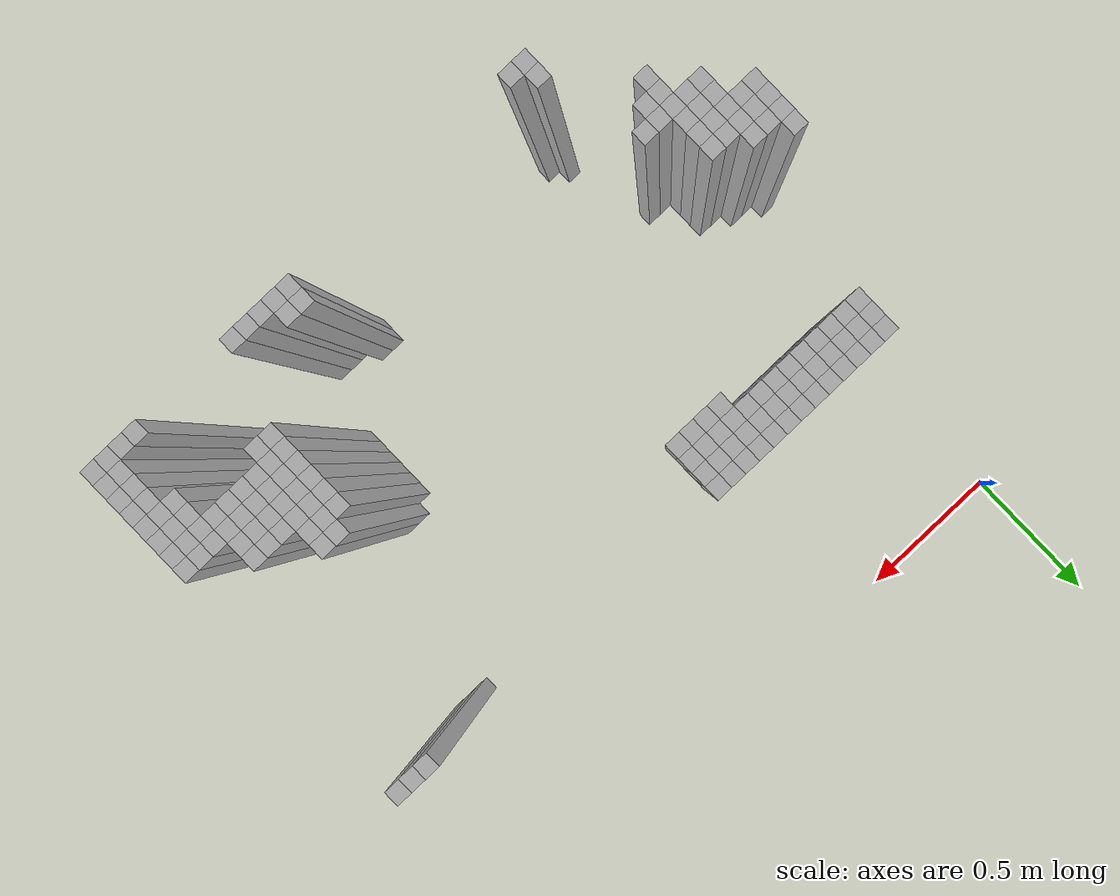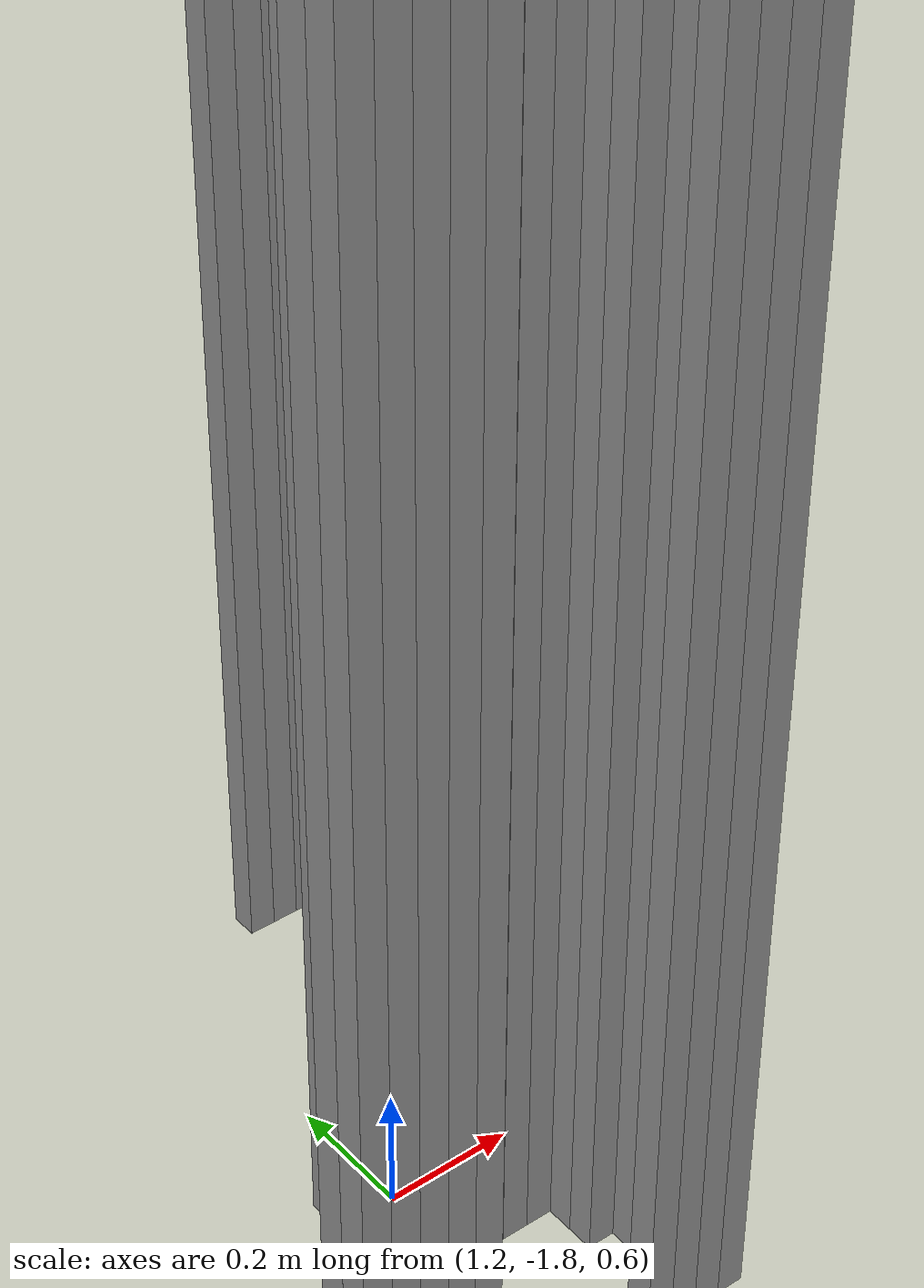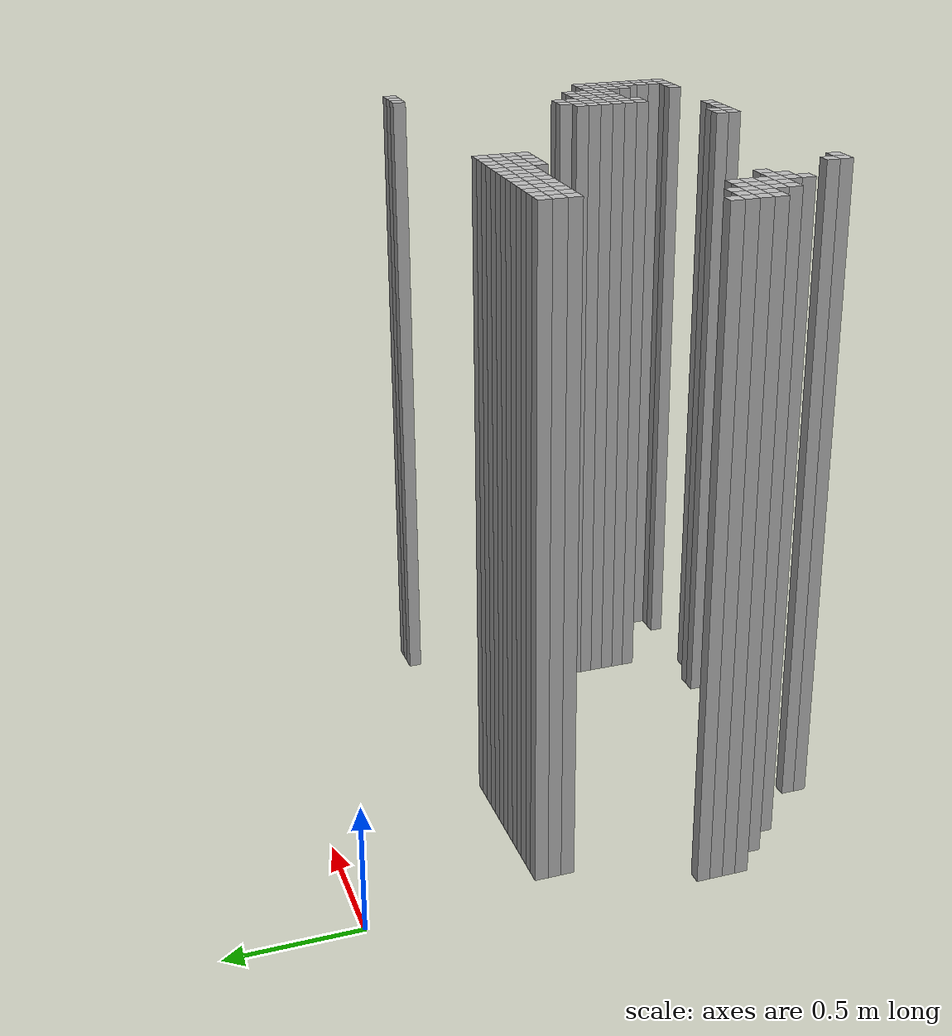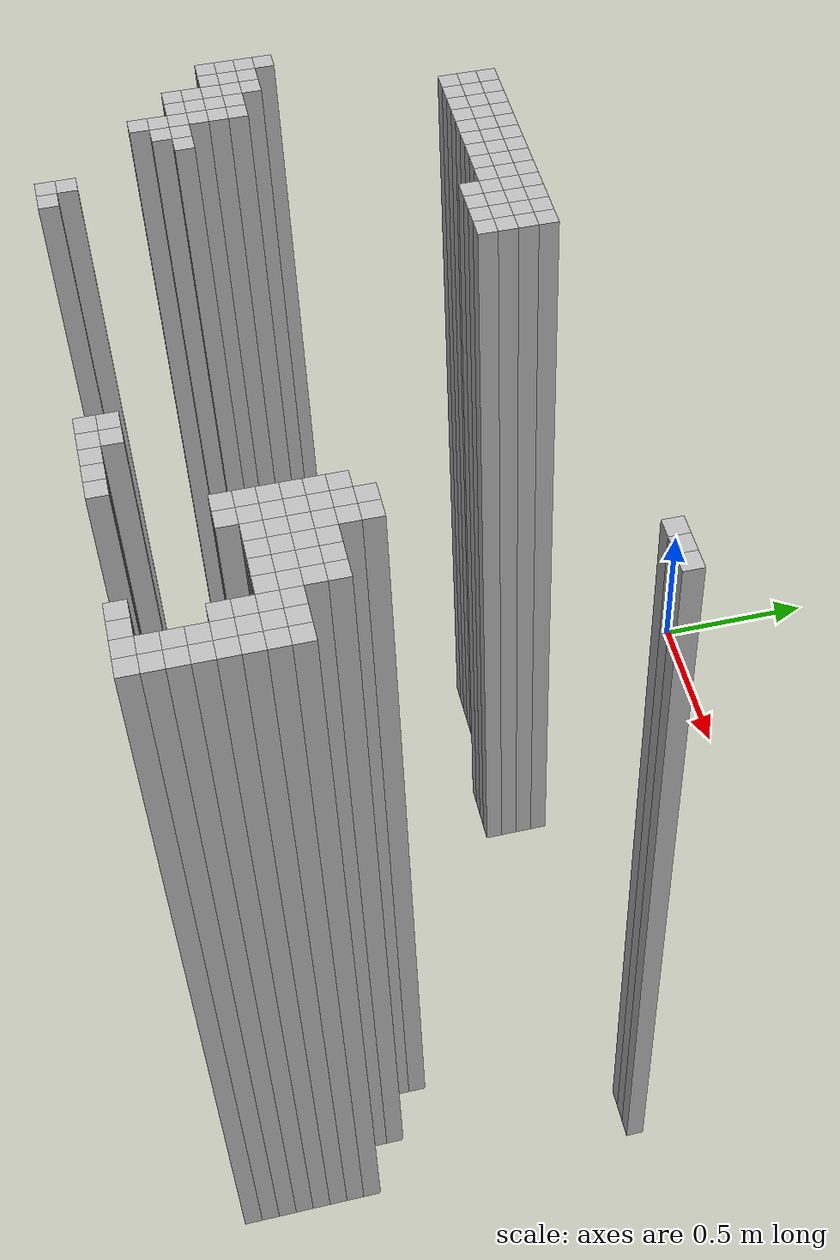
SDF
<sdf version="1.9">
 <world name="map_world">
  <model name="wall_225_167">
   <static>true</static>
   <pose>0.089 -0.670 1.250 0 0 0</pose>
   <link name="link">
    <collision name="collision"><geometry><box><size>0.050 0.050 2.500</size></box></geometry></collision>
    <visual name="visual"><geometry><box><size>0.050 0.050 2.500</size></box></geometry></visual>
   </link>
  </model>
  <model name="wall_226_167">
   <static>true</static>
   <pose>0.139 -0.670 1.250 0 0 0</pose>
   <link name="link">
    <collision name="collision"><geometry><box><size>0.050 0.050 2.500</size></box></geometry></collision>
    <visual name="visual"><geometry><box><size>0.050 0.050 2.500</size></box></geometry></visual>
   </link>
  </model>
  <model name="wall_227_167">
   <static>true</static>
   <pose>0.189 -0.670 1.250 0 0 0</pose>
   <link name="link">
    <collision name="collision"><geometry><box><size>0.050 0.050 2.500</size></box></geometry></collision>
    <visual name="visual"><geometry><box><size>0.050 0.050 2.500</size></box></geometry></visual>
   </link>
  </model>
  <model name="wall_228_167">
   <static>true</static>
   <pose>0.239 -0.670 1.250 0 0 0</pose>
   <link name="link">
    <collision name="collision"><geometry><box><size>0.050 0.050 2.500</size></box></geometry></collision>
    <visual name="visual"><geometry><box><size>0.050 0.050 2.500</size></box></geometry></visual>
   </link>
  </model>
  <model name="wall_229_167">
   <static>true</static>
   <pose>0.289 -0.670 1.250 0 0 0</pose>
   <link name="link">
    <collision name="collision"><geometry><box><size>0.050 0.050 2.500</size></box></geometry></collision>
    <visual name="visual"><geometry><box><size>0.050 0.050 2.500</size></box></geometry></visual>
   </link>
  </model>
  <model name="wall_230_167">
   <static>true</static>
   <pose>0.339 -0.670 1.250 0 0 0</pose>
   <link name="link">
    <collision name="collision"><geometry><box><size>0.050 0.050 2.500</size></box></geometry></collision>
    <visual name="visual"><geometry><box><size>0.050 0.050 2.500</size></box></geometry></visual>
   </link>
  </model>
  <model name="wall_231_167">
   <static>true</static>
   <pose>0.389 -0.670 1.250 0 0 0</pose>
   <link name="link">
    <collision name="collision"><geometry><box><size>0.050 0.050 2.500</size></box></geometry></collision>
    <visual name="visual"><geometry><box><size>0.050 0.050 2.500</size></box></geometry></visual>
   </link>
  </model>
  <model name="wall_232_167">
   <static>true</static>
   <pose>0.439 -0.670 1.250 0 0 0</pose>
   <link name="link">
    <collision name="collision"><geometry><box><size>0.050 0.050 2.500</size></box></geometry></collision>
    <visual name="visual"><geometry><box><size>0.050 0.050 2.500</size></box></geometry></visual>
   </link>
  </model>
  <model name="wall_233_167">
   <static>true</static>
   <pose>0.489 -0.670 1.250 0 0 0</pose>
   <link name="link">
    <collision name="collision"><geometry><box><size>0.050 0.050 2.500</size></box></geometry></collision>
    <visual name="visual"><geometry><box><size>0.050 0.050 2.500</size></box></geometry></visual>
   </link>
  </model>
  <model name="wall_234_167">
   <static>true</static>
   <pose>0.539 -0.670 1.250 0 0 0</pose>
   <link name="link">
    <collision name="collision"><geometry><box><size>0.050 0.050 2.500</size></box></geometry></collision>
    <visual name="visual"><geometry><box><size>0.050 0.050 2.500</size></box></geometry></visual>
   </link>
  </model>
  <model name="wall_235_167">
   <static>true</static>
   <pose>0.589 -0.670 1.250 0 0 0</pose>
   <link name="link">
    <collision name="collision"><geometry><box><size>0.050 0.050 2.500</size></box></geometry></collision>
    <visual name="visual"><geometry><box><size>0.050 0.050 2.500</size></box></geometry></visual>
   </link>
  </model>
  <model name="wall_236_167">
   <static>true</static>
   <pose>0.639 -0.670 1.250 0 0 0</pose>
   <link name="link">
    <collision name="collision"><geometry><box><size>0.050 0.050 2.500</size></box></geometry></collision>
    <visual name="visual"><geometry><box><size>0.050 0.050 2.500</size></box></geometry></visual>
   </link>
  </model>
  <model name="wall_237_167">
   <static>true</static>
   <pose>0.689 -0.670 1.250 0 0 0</pose>
   <link name="link">
    <collision name="collision"><geometry><box><size>0.050 0.050 2.500</size></box></geometry></collision>
    <visual name="visual"><geometry><box><size>0.050 0.050 2.500</size></box></geometry></visual>
   </link>
  </model>
  <model name="wall_258_167">
   <static>true</static>
   <pose>1.739 -0.670 1.250 0 0 0</pose>
   <link name="link">
    <collision name="collision"><geometry><box><size>0.050 0.050 2.500</size></box></geometry></collision>
    <visual name="visual"><geometry><box><size>0.050 0.050 2.500</size></box></geometry></visual>
   </link>
  </model>
  <model name="wall_259_167">
   <static>true</static>
   <pose>1.789 -0.670 1.250 0 0 0</pose>
   <link name="link">
    <collision name="collision"><geometry><box><size>0.050 0.050 2.500</size></box></geometry></collision>
    <visual name="visual"><geometry><box><size>0.050 0.050 2.500</size></box></geometry></visual>
   </link>
  </model>
  <model name="wall_260_167">
   <static>true</static>
   <pose>1.839 -0.670 1.250 0 0 0</pose>
   <link name="link">
    <collision name="collision"><geometry><box><size>0.050 0.050 2.500</size></box></geometry></collision>
    <visual name="visual"><geometry><box><size>0.050 0.050 2.500</size></box></geometry></visual>
   </link>
  </model>
  <model name="wall_225_168">
   <static>true</static>
   <pose>0.089 -0.720 1.250 0 0 0</pose>
   <link name="link">
    <collision name="collision"><geometry><box><size>0.050 0.050 2.500</size></box></geometry></collision>
    <visual name="visual"><geometry><box><size>0.050 0.050 2.500</size></box></geometry></visual>
   </link>
  </model>
  <model name="wall_226_168">
   <static>true</static>
   <pose>0.139 -0.720 1.250 0 0 0</pose>
   <link name="link">
    <collision name="collision"><geometry><box><size>0.050 0.050 2.500</size></box></geometry></collision>
    <visual name="visual"><geometry><box><size>0.050 0.050 2.500</size></box></geometry></visual>
   </link>
  </model>
  <model name="wall_227_168">
   <static>true</static>
   <pose>0.189 -0.720 1.250 0 0 0</pose>
   <link name="link">
    <collision name="collision"><geometry><box><size>0.050 0.050 2.500</size></box></geometry></collision>
    <visual name="visual"><geometry><box><size>0.050 0.050 2.500</size></box></geometry></visual>
   </link>
  </model>
  <model name="wall_228_168">
   <static>true</static>
   <pose>0.239 -0.720 1.250 0 0 0</pose>
   <link name="link">
    <collision name="collision"><geometry><box><size>0.050 0.050 2.500</size></box></geometry></collision>
    <visual name="visual"><geometry><box><size>0.050 0.050 2.500</size></box></geometry></visual>
   </link>
  </model>
  <model name="wall_229_168">
   <static>true</static>
   <pose>0.289 -0.720 1.250 0 0 0</pose>
   <link name="link">
    <collision name="collision"><geometry><box><size>0.050 0.050 2.500</size></box></geometry></collision>
    <visual name="visual"><geometry><box><size>0.050 0.050 2.500</size></box></geometry></visual>
   </link>
  </model>
  <model name="wall_230_168">
   <static>true</static>
   <pose>0.339 -0.720 1.250 0 0 0</pose>
   <link name="link">
    <collision name="collision"><geometry><box><size>0.050 0.050 2.500</size></box></geometry></collision>
    <visual name="visual"><geometry><box><size>0.050 0.050 2.500</size></box></geometry></visual>
   </link>
  </model>
  <model name="wall_231_168">
   <static>true</static>
   <pose>0.389 -0.720 1.250 0 0 0</pose>
   <link name="link">
    <collision name="collision"><geometry><box><size>0.050 0.050 2.500</size></box></geometry></collision>
    <visual name="visual"><geometry><box><size>0.050 0.050 2.500</size></box></geometry></visual>
   </link>
  </model>
  <model name="wall_232_168">
   <static>true</static>
   <pose>0.439 -0.720 1.250 0 0 0</pose>
   <link name="link">
    <collision name="collision"><geometry><box><size>0.050 0.050 2.500</size></box></geometry></collision>
    <visual name="visual"><geometry><box><size>0.050 0.050 2.500</size></box></geometry></visual>
   </link>
  </model>
  <model name="wall_233_168">
   <static>true</static>
   <pose>0.489 -0.720 1.250 0 0 0</pose>
   <link name="link">
    <collision name="collision"><geometry><box><size>0.050 0.050 2.500</size></box></geometry></collision>
    <visual name="visual"><geometry><box><size>0.050 0.050 2.500</size></box></geometry></visual>
   </link>
  </model>
  <model name="wall_234_168">
   <static>true</static>
   <pose>0.539 -0.720 1.250 0 0 0</pose>
   <link name="link">
    <collision name="collision"><geometry><box><size>0.050 0.050 2.500</size></box></geometry></collision>
    <visual name="visual"><geometry><box><size>0.050 0.050 2.500</size></box></geometry></visual>
   </link>
  </model>
  <model name="wall_235_168">
   <static>true</static>
   <pose>0.589 -0.720 1.250 0 0 0</pose>
   <link name="link">
    <collision name="collision"><geometry><box><size>0.050 0.050 2.500</size></box></geometry></collision>
    <visual name="visual"><geometry><box><size>0.050 0.050 2.500</size></box></geometry></visual>
   </link>
  </model>
  <model name="wall_236_168">
   <static>true</static>
   <pose>0.639 -0.720 1.250 0 0 0</pose>
   <link name="link">
    <collision name="collision"><geometry><box><size>0.050 0.050 2.500</size></box></geometry></collision>
    <visual name="visual"><geometry><box><size>0.050 0.050 2.500</size></box></geometry></visual>
   </link>
  </model>
  <model name="wall_237_168">
   <static>true</static>
   <pose>0.689 -0.720 1.250 0 0 0</pose>
   <link name="link">
    <collision name="collision"><geometry><box><size>0.050 0.050 2.500</size></box></geometry></collision>
    <visual name="visual"><geometry><box><size>0.050 0.050 2.500</size></box></geometry></visual>
   </link>
  </model>
  <model name="wall_225_169">
   <static>true</static>
   <pose>0.089 -0.770 1.250 0 0 0</pose>
   <link name="link">
    <collision name="collision"><geometry><box><size>0.050 0.050 2.500</size></box></geometry></collision>
    <visual name="visual"><geometry><box><size>0.050 0.050 2.500</size></box></geometry></visual>
   </link>
  </model>
  <model name="wall_226_169">
   <static>true</static>
   <pose>0.139 -0.770 1.250 0 0 0</pose>
   <link name="link">
    <collision name="collision"><geometry><box><size>0.050 0.050 2.500</size></box></geometry></collision>
    <visual name="visual"><geometry><box><size>0.050 0.050 2.500</size></box></geometry></visual>
   </link>
  </model>
  <model name="wall_227_169">
   <static>true</static>
   <pose>0.189 -0.770 1.250 0 0 0</pose>
   <link name="link">
    <collision name="collision"><geometry><box><size>0.050 0.050 2.500</size></box></geometry></collision>
    <visual name="visual"><geometry><box><size>0.050 0.050 2.500</size></box></geometry></visual>
   </link>
  </model>
  <model name="wall_228_169">
   <static>true</static>
   <pose>0.239 -0.770 1.250 0 0 0</pose>
   <link name="link">
    <collision name="collision"><geometry><box><size>0.050 0.050 2.500</size></box></geometry></collision>
    <visual name="visual"><geometry><box><size>0.050 0.050 2.500</size></box></geometry></visual>
   </link>
  </model>
  <model name="wall_229_169">
   <static>true</static>
   <pose>0.289 -0.770 1.250 0 0 0</pose>
   <link name="link">
    <collision name="collision"><geometry><box><size>0.050 0.050 2.500</size></box></geometry></collision>
    <visual name="visual"><geometry><box><size>0.050 0.050 2.500</size></box></geometry></visual>
   </link>
  </model>
  <model name="wall_230_169">
   <static>true</static>
   <pose>0.339 -0.770 1.250 0 0 0</pose>
   <link name="link">
    <collision name="collision"><geometry><box><size>0.050 0.050 2.500</size></box></geometry></collision>
    <visual name="visual"><geometry><box><size>0.050 0.050 2.500</size></box></geometry></visual>
   </link>
  </model>
  <model name="wall_231_169">
   <static>true</static>
   <pose>0.389 -0.770 1.250 0 0 0</pose>
   <link name="link">
    <collision name="collision"><geometry><box><size>0.050 0.050 2.500</size></box></geometry></collision>
    <visual name="visual"><geometry><box><size>0.050 0.050 2.500</size></box></geometry></visual>
   </link>
  </model>
  <model name="wall_232_169">
   <static>true</static>
   <pose>0.439 -0.770 1.250 0 0 0</pose>
   <link name="link">
    <collision name="collision"><geometry><box><size>0.050 0.050 2.500</size></box></geometry></collision>
    <visual name="visual"><geometry><box><size>0.050 0.050 2.500</size></box></geometry></visual>
   </link>
  </model>
  <model name="wall_233_169">
   <static>true</static>
   <pose>0.489 -0.770 1.250 0 0 0</pose>
   <link name="link">
    <collision name="collision"><geometry><box><size>0.050 0.050 2.500</size></box></geometry></collision>
    <visual name="visual"><geometry><box><size>0.050 0.050 2.500</size></box></geometry></visual>
   </link>
  </model>
  <model name="wall_234_169">
   <static>true</static>
   <pose>0.539 -0.770 1.250 0 0 0</pose>
   <link name="link">
    <collision name="collision"><geometry><box><size>0.050 0.050 2.500</size></box></geometry></collision>
    <visual name="visual"><geometry><box><size>0.050 0.050 2.500</size></box></geometry></visual>
   </link>
  </model>
  <model name="wall_235_169">
   <static>true</static>
   <pose>0.589 -0.770 1.250 0 0 0</pose>
   <link name="link">
    <collision name="collision"><geometry><box><size>0.050 0.050 2.500</size></box></geometry></collision>
    <visual name="visual"><geometry><box><size>0.050 0.050 2.500</size></box></geometry></visual>
   </link>
  </model>
  <model name="wall_236_169">
   <static>true</static>
   <pose>0.639 -0.770 1.250 0 0 0</pose>
   <link name="link">
    <collision name="collision"><geometry><box><size>0.050 0.050 2.500</size></box></geometry></collision>
    <visual name="visual"><geometry><box><size>0.050 0.050 2.500</size></box></geometry></visual>
   </link>
  </model>
  <model name="wall_237_169">
   <static>true</static>
   <pose>0.689 -0.770 1.250 0 0 0</pose>
   <link name="link">
    <collision name="collision"><geometry><box><size>0.050 0.050 2.500</size></box></geometry></collision>
    <visual name="visual"><geometry><box><size>0.050 0.050 2.500</size></box></geometry></visual>
   </link>
  </model>
  <model name="wall_234_170">
   <static>true</static>
   <pose>0.539 -0.820 1.250 0 0 0</pose>
   <link name="link">
    <collision name="collision"><geometry><box><size>0.050 0.050 2.500</size></box></geometry></collision>
    <visual name="visual"><geometry><box><size>0.050 0.050 2.500</size></box></geometry></visual>
   </link>
  </model>
  <model name="wall_235_170">
   <static>true</static>
   <pose>0.589 -0.820 1.250 0 0 0</pose>
   <link name="link">
    <collision name="collision"><geometry><box><size>0.050 0.050 2.500</size></box></geometry></collision>
    <visual name="visual"><geometry><box><size>0.050 0.050 2.500</size></box></geometry></visual>
   </link>
  </model>
  <model name="wall_236_170">
   <static>true</static>
   <pose>0.639 -0.820 1.250 0 0 0</pose>
   <link name="link">
    <collision name="collision"><geometry><box><size>0.050 0.050 2.500</size></box></geometry></collision>
    <visual name="visual"><geometry><box><size>0.050 0.050 2.500</size></box></geometry></visual>
   </link>
  </model>
  <model name="wall_237_170">
   <static>true</static>
   <pose>0.689 -0.820 1.250 0 0 0</pose>
   <link name="link">
    <collision name="collision"><geometry><box><size>0.050 0.050 2.500</size></box></geometry></collision>
    <visual name="visual"><geometry><box><size>0.050 0.050 2.500</size></box></geometry></visual>
   </link>
  </model>
  <model name="wall_221_178">
   <static>true</static>
   <pose>-0.111 -1.220 1.250 0 0 0</pose>
   <link name="link">
    <collision name="collision"><geometry><box><size>0.050 0.050 2.500</size></box></geometry></collision>
    <visual name="visual"><geometry><box><size>0.050 0.050 2.500</size></box></geometry></visual>
   </link>
  </model>
  <model name="wall_221_179">
   <static>true</static>
   <pose>-0.111 -1.270 1.250 0 0 0</pose>
   <link name="link">
    <collision name="collision"><geometry><box><size>0.050 0.050 2.500</size></box></geometry></collision>
    <visual name="visual"><geometry><box><size>0.050 0.050 2.500</size></box></geometry></visual>
   </link>
  </model>
  <model name="wall_222_179">
   <static>true</static>
   <pose>-0.061 -1.270 1.250 0 0 0</pose>
   <link name="link">
    <collision name="collision"><geometry><box><size>0.050 0.050 2.500</size></box></geometry></collision>
    <visual name="visual"><geometry><box><size>0.050 0.050 2.500</size></box></geometry></visual>
   </link>
  </model>
  <model name="wall_223_179">
   <static>true</static>
   <pose>-0.011 -1.270 1.250 0 0 0</pose>
   <link name="link">
    <collision name="collision"><geometry><box><size>0.050 0.050 2.500</size></box></geometry></collision>
    <visual name="visual"><geometry><box><size>0.050 0.050 2.500</size></box></geometry></visual>
   </link>
  </model>
  <model name="wall_253_179">
   <static>true</static>
   <pose>1.489 -1.270 1.250 0 0 0</pose>
   <link name="link">
    <collision name="collision"><geometry><box><size>0.050 0.050 2.500</size></box></geometry></collision>
    <visual name="visual"><geometry><box><size>0.050 0.050 2.500</size></box></geometry></visual>
   </link>
  </model>
  <model name="wall_254_179">
   <static>true</static>
   <pose>1.539 -1.270 1.250 0 0 0</pose>
   <link name="link">
    <collision name="collision"><geometry><box><size>0.050 0.050 2.500</size></box></geometry></collision>
    <visual name="visual"><geometry><box><size>0.050 0.050 2.500</size></box></geometry></visual>
   </link>
  </model>
  <model name="wall_221_180">
   <static>true</static>
   <pose>-0.111 -1.320 1.250 0 0 0</pose>
   <link name="link">
    <collision name="collision"><geometry><box><size>0.050 0.050 2.500</size></box></geometry></collision>
    <visual name="visual"><geometry><box><size>0.050 0.050 2.500</size></box></geometry></visual>
   </link>
  </model>
  <model name="wall_222_180">
   <static>true</static>
   <pose>-0.061 -1.320 1.250 0 0 0</pose>
   <link name="link">
    <collision name="collision"><geometry><box><size>0.050 0.050 2.500</size></box></geometry></collision>
    <visual name="visual"><geometry><box><size>0.050 0.050 2.500</size></box></geometry></visual>
   </link>
  </model>
  <model name="wall_223_180">
   <static>true</static>
   <pose>-0.011 -1.320 1.250 0 0 0</pose>
   <link name="link">
    <collision name="collision"><geometry><box><size>0.050 0.050 2.500</size></box></geometry></collision>
    <visual name="visual"><geometry><box><size>0.050 0.050 2.500</size></box></geometry></visual>
   </link>
  </model>
  <model name="wall_224_180">
   <static>true</static>
   <pose>0.039 -1.320 1.250 0 0 0</pose>
   <link name="link">
    <collision name="collision"><geometry><box><size>0.050 0.050 2.500</size></box></geometry></collision>
    <visual name="visual"><geometry><box><size>0.050 0.050 2.500</size></box></geometry></visual>
   </link>
  </model>
  <model name="wall_225_180">
   <static>true</static>
   <pose>0.089 -1.320 1.250 0 0 0</pose>
   <link name="link">
    <collision name="collision"><geometry><box><size>0.050 0.050 2.500</size></box></geometry></collision>
    <visual name="visual"><geometry><box><size>0.050 0.050 2.500</size></box></geometry></visual>
   </link>
  </model>
  <model name="wall_252_180">
   <static>true</static>
   <pose>1.439 -1.320 1.250 0 0 0</pose>
   <link name="link">
    <collision name="collision"><geometry><box><size>0.050 0.050 2.500</size></box></geometry></collision>
    <visual name="visual"><geometry><box><size>0.050 0.050 2.500</size></box></geometry></visual>
   </link>
  </model>
  <model name="wall_253_180">
   <static>true</static>
   <pose>1.489 -1.320 1.250 0 0 0</pose>
   <link name="link">
    <collision name="collision"><geometry><box><size>0.050 0.050 2.500</size></box></geometry></collision>
    <visual name="visual"><geometry><box><size>0.050 0.050 2.500</size></box></geometry></visual>
   </link>
  </model>
  <model name="wall_254_180">
   <static>true</static>
   <pose>1.539 -1.320 1.250 0 0 0</pose>
   <link name="link">
    <collision name="collision"><geometry><box><size>0.050 0.050 2.500</size></box></geometry></collision>
    <visual name="visual"><geometry><box><size>0.050 0.050 2.500</size></box></geometry></visual>
   </link>
  </model>
  <model name="wall_221_181">
   <static>true</static>
   <pose>-0.111 -1.370 1.250 0 0 0</pose>
   <link name="link">
    <collision name="collision"><geometry><box><size>0.050 0.050 2.500</size></box></geometry></collision>
    <visual name="visual"><geometry><box><size>0.050 0.050 2.500</size></box></geometry></visual>
   </link>
  </model>
  <model name="wall_222_181">
   <static>true</static>
   <pose>-0.061 -1.370 1.250 0 0 0</pose>
   <link name="link">
    <collision name="collision"><geometry><box><size>0.050 0.050 2.500</size></box></geometry></collision>
    <visual name="visual"><geometry><box><size>0.050 0.050 2.500</size></box></geometry></visual>
   </link>
  </model>
  <model name="wall_223_181">
   <static>true</static>
   <pose>-0.011 -1.370 1.250 0 0 0</pose>
   <link name="link">
    <collision name="collision"><geometry><box><size>0.050 0.050 2.500</size></box></geometry></collision>
    <visual name="visual"><geometry><box><size>0.050 0.050 2.500</size></box></geometry></visual>
   </link>
  </model>
  <model name="wall_224_181">
   <static>true</static>
   <pose>0.039 -1.370 1.250 0 0 0</pose>
   <link name="link">
    <collision name="collision"><geometry><box><size>0.050 0.050 2.500</size></box></geometry></collision>
    <visual name="visual"><geometry><box><size>0.050 0.050 2.500</size></box></geometry></visual>
   </link>
  </model>
  <model name="wall_225_181">
   <static>true</static>
   <pose>0.089 -1.370 1.250 0 0 0</pose>
   <link name="link">
    <collision name="collision"><geometry><box><size>0.050 0.050 2.500</size></box></geometry></collision>
    <visual name="visual"><geometry><box><size>0.050 0.050 2.500</size></box></geometry></visual>
   </link>
  </model>
  <model name="wall_252_181">
   <static>true</static>
   <pose>1.439 -1.370 1.250 0 0 0</pose>
   <link name="link">
    <collision name="collision"><geometry><box><size>0.050 0.050 2.500</size></box></geometry></collision>
    <visual name="visual"><geometry><box><size>0.050 0.050 2.500</size></box></geometry></visual>
   </link>
  </model>
  <model name="wall_253_181">
   <static>true</static>
   <pose>1.489 -1.370 1.250 0 0 0</pose>
   <link name="link">
    <collision name="collision"><geometry><box><size>0.050 0.050 2.500</size></box></geometry></collision>
    <visual name="visual"><geometry><box><size>0.050 0.050 2.500</size></box></geometry></visual>
   </link>
  </model>
  <model name="wall_254_181">
   <static>true</static>
   <pose>1.539 -1.370 1.250 0 0 0</pose>
   <link name="link">
    <collision name="collision"><geometry><box><size>0.050 0.050 2.500</size></box></geometry></collision>
    <visual name="visual"><geometry><box><size>0.050 0.050 2.500</size></box></geometry></visual>
   </link>
  </model>
  <model name="wall_255_181">
   <static>true</static>
   <pose>1.589 -1.370 1.250 0 0 0</pose>
   <link name="link">
    <collision name="collision"><geometry><box><size>0.050 0.050 2.500</size></box></geometry></collision>
    <visual name="visual"><geometry><box><size>0.050 0.050 2.500</size></box></geometry></visual>
   </link>
  </model>
  <model name="wall_256_181">
   <static>true</static>
   <pose>1.639 -1.370 1.250 0 0 0</pose>
   <link name="link">
    <collision name="collision"><geometry><box><size>0.050 0.050 2.500</size></box></geometry></collision>
    <visual name="visual"><geometry><box><size>0.050 0.050 2.500</size></box></geometry></visual>
   </link>
  </model>
  <model name="wall_257_181">
   <static>true</static>
   <pose>1.689 -1.370 1.250 0 0 0</pose>
   <link name="link">
    <collision name="collision"><geometry><box><size>0.050 0.050 2.500</size></box></geometry></collision>
    <visual name="visual"><geometry><box><size>0.050 0.050 2.500</size></box></geometry></visual>
   </link>
  </model>
  <model name="wall_223_182">
   <static>true</static>
   <pose>-0.011 -1.420 1.250 0 0 0</pose>
   <link name="link">
    <collision name="collision"><geometry><box><size>0.050 0.050 2.500</size></box></geometry></collision>
    <visual name="visual"><geometry><box><size>0.050 0.050 2.500</size></box></geometry></visual>
   </link>
  </model>
  <model name="wall_224_182">
   <static>true</static>
   <pose>0.039 -1.420 1.250 0 0 0</pose>
   <link name="link">
    <collision name="collision"><geometry><box><size>0.050 0.050 2.500</size></box></geometry></collision>
    <visual name="visual"><geometry><box><size>0.050 0.050 2.500</size></box></geometry></visual>
   </link>
  </model>
  <model name="wall_225_182">
   <static>true</static>
   <pose>0.089 -1.420 1.250 0 0 0</pose>
   <link name="link">
    <collision name="collision"><geometry><box><size>0.050 0.050 2.500</size></box></geometry></collision>
    <visual name="visual"><geometry><box><size>0.050 0.050 2.500</size></box></geometry></visual>
   </link>
  </model>
  <model name="wall_252_182">
   <static>true</static>
   <pose>1.439 -1.420 1.250 0 0 0</pose>
   <link name="link">
    <collision name="collision"><geometry><box><size>0.050 0.050 2.500</size></box></geometry></collision>
    <visual name="visual"><geometry><box><size>0.050 0.050 2.500</size></box></geometry></visual>
   </link>
  </model>
  <model name="wall_253_182">
   <static>true</static>
   <pose>1.489 -1.420 1.250 0 0 0</pose>
   <link name="link">
    <collision name="collision"><geometry><box><size>0.050 0.050 2.500</size></box></geometry></collision>
    <visual name="visual"><geometry><box><size>0.050 0.050 2.500</size></box></geometry></visual>
   </link>
  </model>
  <model name="wall_254_182">
   <static>true</static>
   <pose>1.539 -1.420 1.250 0 0 0</pose>
   <link name="link">
    <collision name="collision"><geometry><box><size>0.050 0.050 2.500</size></box></geometry></collision>
    <visual name="visual"><geometry><box><size>0.050 0.050 2.500</size></box></geometry></visual>
   </link>
  </model>
  <model name="wall_255_182">
   <static>true</static>
   <pose>1.589 -1.420 1.250 0 0 0</pose>
   <link name="link">
    <collision name="collision"><geometry><box><size>0.050 0.050 2.500</size></box></geometry></collision>
    <visual name="visual"><geometry><box><size>0.050 0.050 2.500</size></box></geometry></visual>
   </link>
  </model>
  <model name="wall_256_182">
   <static>true</static>
   <pose>1.639 -1.420 1.250 0 0 0</pose>
   <link name="link">
    <collision name="collision"><geometry><box><size>0.050 0.050 2.500</size></box></geometry></collision>
    <visual name="visual"><geometry><box><size>0.050 0.050 2.500</size></box></geometry></visual>
   </link>
  </model>
  <model name="wall_257_182">
   <static>true</static>
   <pose>1.689 -1.420 1.250 0 0 0</pose>
   <link name="link">
    <collision name="collision"><geometry><box><size>0.050 0.050 2.500</size></box></geometry></collision>
    <visual name="visual"><geometry><box><size>0.050 0.050 2.500</size></box></geometry></visual>
   </link>
  </model>
  <model name="wall_223_183">
   <static>true</static>
   <pose>-0.011 -1.470 1.250 0 0 0</pose>
   <link name="link">
    <collision name="collision"><geometry><box><size>0.050 0.050 2.500</size></box></geometry></collision>
    <visual name="visual"><geometry><box><size>0.050 0.050 2.500</size></box></geometry></visual>
   </link>
  </model>
  <model name="wall_224_183">
   <static>true</static>
   <pose>0.039 -1.470 1.250 0 0 0</pose>
   <link name="link">
    <collision name="collision"><geometry><box><size>0.050 0.050 2.500</size></box></geometry></collision>
    <visual name="visual"><geometry><box><size>0.050 0.050 2.500</size></box></geometry></visual>
   </link>
  </model>
  <model name="wall_225_183">
   <static>true</static>
   <pose>0.089 -1.470 1.250 0 0 0</pose>
   <link name="link">
    <collision name="collision"><geometry><box><size>0.050 0.050 2.500</size></box></geometry></collision>
    <visual name="visual"><geometry><box><size>0.050 0.050 2.500</size></box></geometry></visual>
   </link>
  </model>
  <model name="wall_226_183">
   <static>true</static>
   <pose>0.139 -1.470 1.250 0 0 0</pose>
   <link name="link">
    <collision name="collision"><geometry><box><size>0.050 0.050 2.500</size></box></geometry></collision>
    <visual name="visual"><geometry><box><size>0.050 0.050 2.500</size></box></geometry></visual>
   </link>
  </model>
  <model name="wall_227_183">
   <static>true</static>
   <pose>0.189 -1.470 1.250 0 0 0</pose>
   <link name="link">
    <collision name="collision"><geometry><box><size>0.050 0.050 2.500</size></box></geometry></collision>
    <visual name="visual"><geometry><box><size>0.050 0.050 2.500</size></box></geometry></visual>
   </link>
  </model>
  <model name="wall_252_183">
   <static>true</static>
   <pose>1.439 -1.470 1.250 0 0 0</pose>
   <link name="link">
    <collision name="collision"><geometry><box><size>0.050 0.050 2.500</size></box></geometry></collision>
    <visual name="visual"><geometry><box><size>0.050 0.050 2.500</size></box></geometry></visual>
   </link>
  </model>
  <model name="wall_253_183">
   <static>true</static>
   <pose>1.489 -1.470 1.250 0 0 0</pose>
   <link name="link">
    <collision name="collision"><geometry><box><size>0.050 0.050 2.500</size></box></geometry></collision>
    <visual name="visual"><geometry><box><size>0.050 0.050 2.500</size></box></geometry></visual>
   </link>
  </model>
  <model name="wall_254_183">
   <static>true</static>
   <pose>1.539 -1.470 1.250 0 0 0</pose>
   <link name="link">
    <collision name="collision"><geometry><box><size>0.050 0.050 2.500</size></box></geometry></collision>
    <visual name="visual"><geometry><box><size>0.050 0.050 2.500</size></box></geometry></visual>
   </link>
  </model>
  <model name="wall_255_183">
   <static>true</static>
   <pose>1.589 -1.470 1.250 0 0 0</pose>
   <link name="link">
    <collision name="collision"><geometry><box><size>0.050 0.050 2.500</size></box></geometry></collision>
    <visual name="visual"><geometry><box><size>0.050 0.050 2.500</size></box></geometry></visual>
   </link>
  </model>
  <model name="wall_256_183">
   <static>true</static>
   <pose>1.639 -1.470 1.250 0 0 0</pose>
   <link name="link">
    <collision name="collision"><geometry><box><size>0.050 0.050 2.500</size></box></geometry></collision>
    <visual name="visual"><geometry><box><size>0.050 0.050 2.500</size></box></geometry></visual>
   </link>
  </model>
  <model name="wall_257_183">
   <static>true</static>
   <pose>1.689 -1.470 1.250 0 0 0</pose>
   <link name="link">
    <collision name="collision"><geometry><box><size>0.050 0.050 2.500</size></box></geometry></collision>
    <visual name="visual"><geometry><box><size>0.050 0.050 2.500</size></box></geometry></visual>
   </link>
  </model>
  <model name="wall_258_183">
   <static>true</static>
   <pose>1.739 -1.470 1.250 0 0 0</pose>
   <link name="link">
    <collision name="collision"><geometry><box><size>0.050 0.050 2.500</size></box></geometry></collision>
    <visual name="visual"><geometry><box><size>0.050 0.050 2.500</size></box></geometry></visual>
   </link>
  </model>
  <model name="wall_259_183">
   <static>true</static>
   <pose>1.789 -1.470 1.250 0 0 0</pose>
   <link name="link">
    <collision name="collision"><geometry><box><size>0.050 0.050 2.500</size></box></geometry></collision>
    <visual name="visual"><geometry><box><size>0.050 0.050 2.500</size></box></geometry></visual>
   </link>
  </model>
  <model name="wall_260_183">
   <static>true</static>
   <pose>1.839 -1.470 1.250 0 0 0</pose>
   <link name="link">
    <collision name="collision"><geometry><box><size>0.050 0.050 2.500</size></box></geometry></collision>
    <visual name="visual"><geometry><box><size>0.050 0.050 2.500</size></box></geometry></visual>
   </link>
  </model>
  <model name="wall_225_184">
   <static>true</static>
   <pose>0.089 -1.520 1.250 0 0 0</pose>
   <link name="link">
    <collision name="collision"><geometry><box><size>0.050 0.050 2.500</size></box></geometry></collision>
    <visual name="visual"><geometry><box><size>0.050 0.050 2.500</size></box></geometry></visual>
   </link>
  </model>
  <model name="wall_226_184">
   <static>true</static>
   <pose>0.139 -1.520 1.250 0 0 0</pose>
   <link name="link">
    <collision name="collision"><geometry><box><size>0.050 0.050 2.500</size></box></geometry></collision>
    <visual name="visual"><geometry><box><size>0.050 0.050 2.500</size></box></geometry></visual>
   </link>
  </model>
  <model name="wall_252_184">
   <static>true</static>
   <pose>1.439 -1.520 1.250 0 0 0</pose>
   <link name="link">
    <collision name="collision"><geometry><box><size>0.050 0.050 2.500</size></box></geometry></collision>
    <visual name="visual"><geometry><box><size>0.050 0.050 2.500</size></box></geometry></visual>
   </link>
  </model>
  <model name="wall_253_184">
   <static>true</static>
   <pose>1.489 -1.520 1.250 0 0 0</pose>
   <link name="link">
    <collision name="collision"><geometry><box><size>0.050 0.050 2.500</size></box></geometry></collision>
    <visual name="visual"><geometry><box><size>0.050 0.050 2.500</size></box></geometry></visual>
   </link>
  </model>
  <model name="wall_254_184">
   <static>true</static>
   <pose>1.539 -1.520 1.250 0 0 0</pose>
   <link name="link">
    <collision name="collision"><geometry><box><size>0.050 0.050 2.500</size></box></geometry></collision>
    <visual name="visual"><geometry><box><size>0.050 0.050 2.500</size></box></geometry></visual>
   </link>
  </model>
  <model name="wall_255_184">
   <static>true</static>
   <pose>1.589 -1.520 1.250 0 0 0</pose>
   <link name="link">
    <collision name="collision"><geometry><box><size>0.050 0.050 2.500</size></box></geometry></collision>
    <visual name="visual"><geometry><box><size>0.050 0.050 2.500</size></box></geometry></visual>
   </link>
  </model>
  <model name="wall_256_184">
   <static>true</static>
   <pose>1.639 -1.520 1.250 0 0 0</pose>
   <link name="link">
    <collision name="collision"><geometry><box><size>0.050 0.050 2.500</size></box></geometry></collision>
    <visual name="visual"><geometry><box><size>0.050 0.050 2.500</size></box></geometry></visual>
   </link>
  </model>
  <model name="wall_257_184">
   <static>true</static>
   <pose>1.689 -1.520 1.250 0 0 0</pose>
   <link name="link">
    <collision name="collision"><geometry><box><size>0.050 0.050 2.500</size></box></geometry></collision>
    <visual name="visual"><geometry><box><size>0.050 0.050 2.500</size></box></geometry></visual>
   </link>
  </model>
  <model name="wall_258_184">
   <static>true</static>
   <pose>1.739 -1.520 1.250 0 0 0</pose>
   <link name="link">
    <collision name="collision"><geometry><box><size>0.050 0.050 2.500</size></box></geometry></collision>
    <visual name="visual"><geometry><box><size>0.050 0.050 2.500</size></box></geometry></visual>
   </link>
  </model>
  <model name="wall_259_184">
   <static>true</static>
   <pose>1.789 -1.520 1.250 0 0 0</pose>
   <link name="link">
    <collision name="collision"><geometry><box><size>0.050 0.050 2.500</size></box></geometry></collision>
    <visual name="visual"><geometry><box><size>0.050 0.050 2.500</size></box></geometry></visual>
   </link>
  </model>
  <model name="wall_260_184">
   <static>true</static>
   <pose>1.839 -1.520 1.250 0 0 0</pose>
   <link name="link">
    <collision name="collision"><geometry><box><size>0.050 0.050 2.500</size></box></geometry></collision>
    <visual name="visual"><geometry><box><size>0.050 0.050 2.500</size></box></geometry></visual>
   </link>
  </model>
  <model name="wall_225_185">
   <static>true</static>
   <pose>0.089 -1.570 1.250 0 0 0</pose>
   <link name="link">
    <collision name="collision"><geometry><box><size>0.050 0.050 2.500</size></box></geometry></collision>
    <visual name="visual"><geometry><box><size>0.050 0.050 2.500</size></box></geometry></visual>
   </link>
  </model>
  <model name="wall_252_185">
   <static>true</static>
   <pose>1.439 -1.570 1.250 0 0 0</pose>
   <link name="link">
    <collision name="collision"><geometry><box><size>0.050 0.050 2.500</size></box></geometry></collision>
    <visual name="visual"><geometry><box><size>0.050 0.050 2.500</size></box></geometry></visual>
   </link>
  </model>
  <model name="wall_253_185">
   <static>true</static>
   <pose>1.489 -1.570 1.250 0 0 0</pose>
   <link name="link">
    <collision name="collision"><geometry><box><size>0.050 0.050 2.500</size></box></geometry></collision>
    <visual name="visual"><geometry><box><size>0.050 0.050 2.500</size></box></geometry></visual>
   </link>
  </model>
  <model name="wall_258_185">
   <static>true</static>
   <pose>1.739 -1.570 1.250 0 0 0</pose>
   <link name="link">
    <collision name="collision"><geometry><box><size>0.050 0.050 2.500</size></box></geometry></collision>
    <visual name="visual"><geometry><box><size>0.050 0.050 2.500</size></box></geometry></visual>
   </link>
  </model>
  <model name="wall_259_185">
   <static>true</static>
   <pose>1.789 -1.570 1.250 0 0 0</pose>
   <link name="link">
    <collision name="collision"><geometry><box><size>0.050 0.050 2.500</size></box></geometry></collision>
    <visual name="visual"><geometry><box><size>0.050 0.050 2.500</size></box></geometry></visual>
   </link>
  </model>
  <model name="wall_260_185">
   <static>true</static>
   <pose>1.839 -1.570 1.250 0 0 0</pose>
   <link name="link">
    <collision name="collision"><geometry><box><size>0.050 0.050 2.500</size></box></geometry></collision>
    <visual name="visual"><geometry><box><size>0.050 0.050 2.500</size></box></geometry></visual>
   </link>
  </model>
  <model name="wall_258_186">
   <static>true</static>
   <pose>1.739 -1.620 1.250 0 0 0</pose>
   <link name="link">
    <collision name="collision"><geometry><box><size>0.050 0.050 2.500</size></box></geometry></collision>
    <visual name="visual"><geometry><box><size>0.050 0.050 2.500</size></box></geometry></visual>
   </link>
  </model>
  <model name="wall_259_186">
   <static>true</static>
   <pose>1.789 -1.620 1.250 0 0 0</pose>
   <link name="link">
    <collision name="collision"><geometry><box><size>0.050 0.050 2.500</size></box></geometry></collision>
    <visual name="visual"><geometry><box><size>0.050 0.050 2.500</size></box></geometry></visual>
   </link>
  </model>
  <model name="wall_260_186">
   <static>true</static>
   <pose>1.839 -1.620 1.250 0 0 0</pose>
   <link name="link">
    <collision name="collision"><geometry><box><size>0.050 0.050 2.500</size></box></geometry></collision>
    <visual name="visual"><geometry><box><size>0.050 0.050 2.500</size></box></geometry></visual>
   </link>
  </model>
  <model name="wall_259_187">
   <static>true</static>
   <pose>1.789 -1.670 1.250 0 0 0</pose>
   <link name="link">
    <collision name="collision"><geometry><box><size>0.050 0.050 2.500</size></box></geometry></collision>
    <visual name="visual"><geometry><box><size>0.050 0.050 2.500</size></box></geometry></visual>
   </link>
  </model>
  <model name="wall_260_187">
   <static>true</static>
   <pose>1.839 -1.670 1.250 0 0 0</pose>
   <link name="link">
    <collision name="collision"><geometry><box><size>0.050 0.050 2.500</size></box></geometry></collision>
    <visual name="visual"><geometry><box><size>0.050 0.050 2.500</size></box></geometry></visual>
   </link>
  </model>
  <model name="wall_259_188">
   <static>true</static>
   <pose>1.789 -1.720 1.250 0 0 0</pose>
   <link name="link">
    <collision name="collision"><geometry><box><size>0.050 0.050 2.500</size></box></geometry></collision>
    <visual name="visual"><geometry><box><size>0.050 0.050 2.500</size></box></geometry></visual>
   </link>
  </model>
  <model name="wall_260_188">
   <static>true</static>
   <pose>1.839 -1.720 1.250 0 0 0</pose>
   <link name="link">
    <collision name="collision"><geometry><box><size>0.050 0.050 2.500</size></box></geometry></collision>
    <visual name="visual"><geometry><box><size>0.050 0.050 2.500</size></box></geometry></visual>
   </link>
  </model>
  <model name="wall_229_189">
   <static>true</static>
   <pose>0.289 -1.770 1.250 0 0 0</pose>
   <link name="link">
    <collision name="collision"><geometry><box><size>0.050 0.050 2.500</size></box></geometry></collision>
    <visual name="visual"><geometry><box><size>0.050 0.050 2.500</size></box></geometry></visual>
   </link>
  </model>
  <model name="wall_246_189">
   <static>true</static>
   <pose>1.139 -1.770 1.250 0 0 0</pose>
   <link name="link">
    <collision name="collision"><geometry><box><size>0.050 0.050 2.500</size></box></geometry></collision>
    <visual name="visual"><geometry><box><size>0.050 0.050 2.500</size></box></geometry></visual>
   </link>
  </model>
  <model name="wall_247_189">
   <static>true</static>
   <pose>1.189 -1.770 1.250 0 0 0</pose>
   <link name="link">
    <collision name="collision"><geometry><box><size>0.050 0.050 2.500</size></box></geometry></collision>
    <visual name="visual"><geometry><box><size>0.050 0.050 2.500</size></box></geometry></visual>
   </link>
  </model>
  <model name="wall_259_189">
   <static>true</static>
   <pose>1.789 -1.770 1.250 0 0 0</pose>
   <link name="link">
    <collision name="collision"><geometry><box><size>0.050 0.050 2.500</size></box></geometry></collision>
    <visual name="visual"><geometry><box><size>0.050 0.050 2.500</size></box></geometry></visual>
   </link>
  </model>
  <model name="wall_260_189">
   <static>true</static>
   <pose>1.839 -1.770 1.250 0 0 0</pose>
   <link name="link">
    <collision name="collision"><geometry><box><size>0.050 0.050 2.500</size></box></geometry></collision>
    <visual name="visual"><geometry><box><size>0.050 0.050 2.500</size></box></geometry></visual>
   </link>
  </model>
  <model name="wall_229_190">
   <static>true</static>
   <pose>0.289 -1.820 1.250 0 0 0</pose>
   <link name="link">
    <collision name="collision"><geometry><box><size>0.050 0.050 2.500</size></box></geometry></collision>
    <visual name="visual"><geometry><box><size>0.050 0.050 2.500</size></box></geometry></visual>
   </link>
  </model>
  <model name="wall_230_190">
   <static>true</static>
   <pose>0.339 -1.820 1.250 0 0 0</pose>
   <link name="link">
    <collision name="collision"><geometry><box><size>0.050 0.050 2.500</size></box></geometry></collision>
    <visual name="visual"><geometry><box><size>0.050 0.050 2.500</size></box></geometry></visual>
   </link>
  </model>
  <model name="wall_246_190">
   <static>true</static>
   <pose>1.139 -1.820 1.250 0 0 0</pose>
   <link name="link">
    <collision name="collision"><geometry><box><size>0.050 0.050 2.500</size></box></geometry></collision>
    <visual name="visual"><geometry><box><size>0.050 0.050 2.500</size></box></geometry></visual>
   </link>
  </model>
  <model name="wall_247_190">
   <static>true</static>
   <pose>1.189 -1.820 1.250 0 0 0</pose>
   <link name="link">
    <collision name="collision"><geometry><box><size>0.050 0.050 2.500</size></box></geometry></collision>
    <visual name="visual"><geometry><box><size>0.050 0.050 2.500</size></box></geometry></visual>
   </link>
  </model>
  <model name="wall_248_190">
   <static>true</static>
   <pose>1.239 -1.820 1.250 0 0 0</pose>
   <link name="link">
    <collision name="collision"><geometry><box><size>0.050 0.050 2.500</size></box></geometry></collision>
    <visual name="visual"><geometry><box><size>0.050 0.050 2.500</size></box></geometry></visual>
   </link>
  </model>
  <model name="wall_249_190">
   <static>true</static>
   <pose>1.289 -1.820 1.250 0 0 0</pose>
   <link name="link">
    <collision name="collision"><geometry><box><size>0.050 0.050 2.500</size></box></geometry></collision>
    <visual name="visual"><geometry><box><size>0.050 0.050 2.500</size></box></geometry></visual>
   </link>
  </model>
  <model name="wall_250_190">
   <static>true</static>
   <pose>1.339 -1.820 1.250 0 0 0</pose>
   <link name="link">
    <collision name="collision"><geometry><box><size>0.050 0.050 2.500</size></box></geometry></collision>
    <visual name="visual"><geometry><box><size>0.050 0.050 2.500</size></box></geometry></visual>
   </link>
  </model>
  <model name="wall_257_190">
   <static>true</static>
   <pose>1.689 -1.820 1.250 0 0 0</pose>
   <link name="link">
    <collision name="collision"><geometry><box><size>0.050 0.050 2.500</size></box></geometry></collision>
    <visual name="visual"><geometry><box><size>0.050 0.050 2.500</size></box></geometry></visual>
   </link>
  </model>
  <model name="wall_258_190">
   <static>true</static>
   <pose>1.739 -1.820 1.250 0 0 0</pose>
   <link name="link">
    <collision name="collision"><geometry><box><size>0.050 0.050 2.500</size></box></geometry></collision>
    <visual name="visual"><geometry><box><size>0.050 0.050 2.500</size></box></geometry></visual>
   </link>
  </model>
  <model name="wall_259_190">
   <static>true</static>
   <pose>1.789 -1.820 1.250 0 0 0</pose>
   <link name="link">
    <collision name="collision"><geometry><box><size>0.050 0.050 2.500</size></box></geometry></collision>
    <visual name="visual"><geometry><box><size>0.050 0.050 2.500</size></box></geometry></visual>
   </link>
  </model>
  <model name="wall_260_190">
   <static>true</static>
   <pose>1.839 -1.820 1.250 0 0 0</pose>
   <link name="link">
    <collision name="collision"><geometry><box><size>0.050 0.050 2.500</size></box></geometry></collision>
    <visual name="visual"><geometry><box><size>0.050 0.050 2.500</size></box></geometry></visual>
   </link>
  </model>
 </world>
</sdf>
